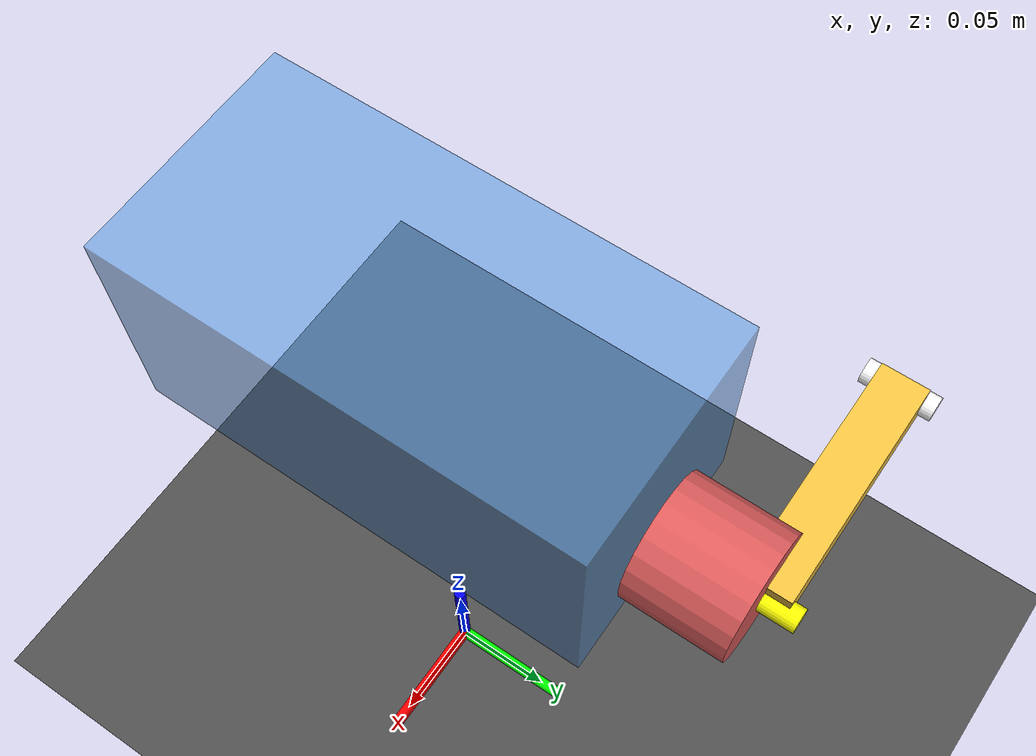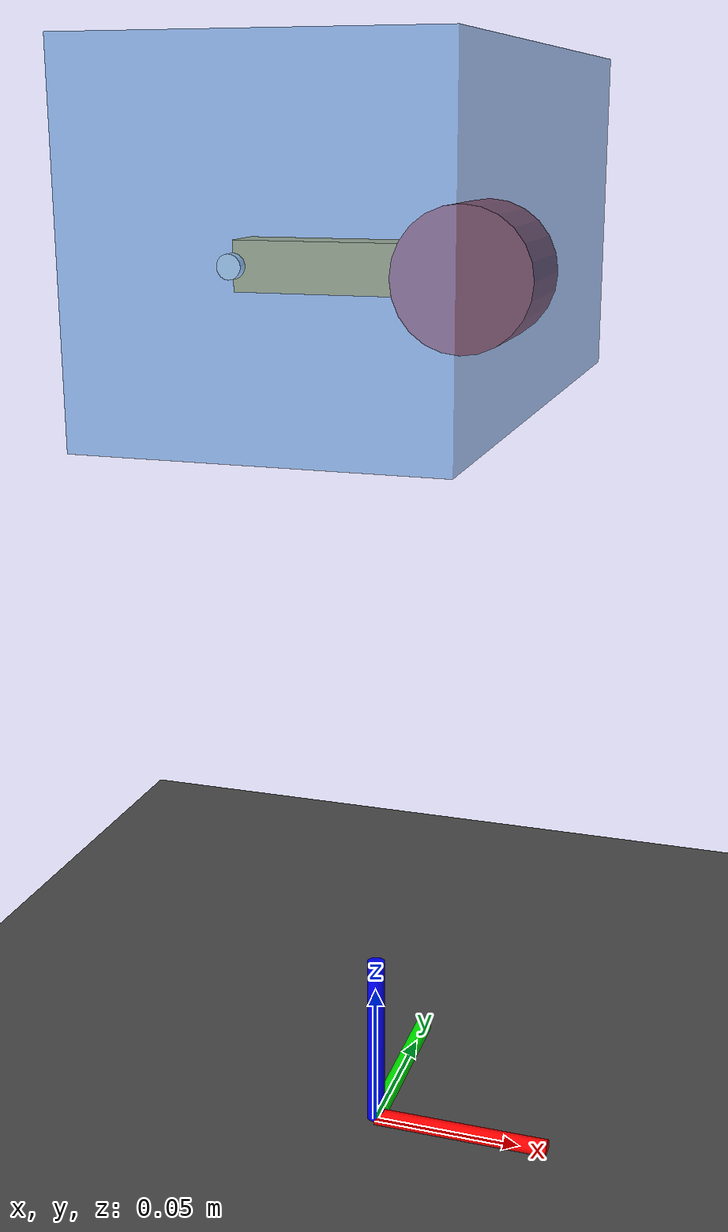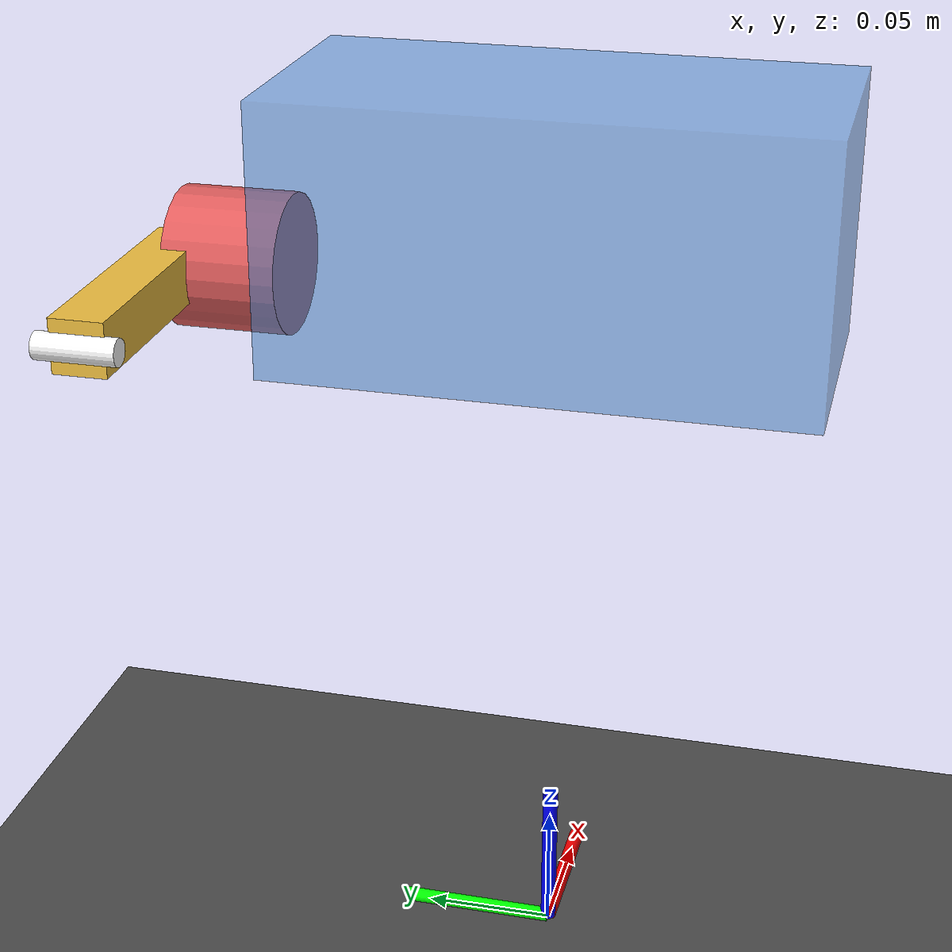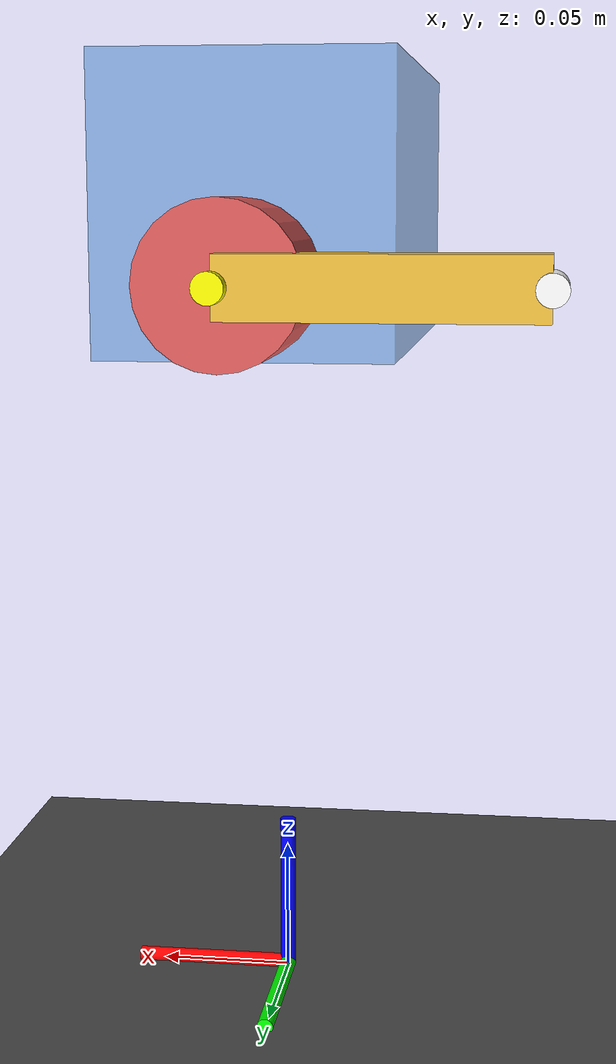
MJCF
<mujoco model="femur_jump">

  <option gravity="0 0 -9.81" timestep="0.00005"/>

  <visual>
    <global offwidth="1280" offheight="720" azimuth="270" elevation="0"/>
  </visual>

  <worldbody>

    <light name="main" pos="0 -1 1" dir="0 1 -1" diffuse="0.8 0.8 0.8"/>
    <light name="fill" pos="0  1 1" dir="0 -1 -1" diffuse="0.3 0.3 0.3"/>

    <!-- Ground plane -->
    <geom name="ground" type="plane" pos="0 0 0" size="2 2 0.01"
          rgba="0.3 0.3 0.3 1" contype="1" conaffinity="1" friction="0.8 0.005 0.0001"/>

    <!-- XYZ axis markers at origin (visual only) -->
    <geom name="axis_x" type="cylinder" fromto="0 0 0.001  0.06 0 0.001"
          size="0.003" rgba="1 0 0 1" contype="0" conaffinity="0" mass="0"/>
    <geom name="axis_y" type="cylinder" fromto="0 0 0.001  0 0.06 0.001"
          size="0.003" rgba="0 1 0 1" contype="0" conaffinity="0" mass="0"/>
    <geom name="axis_z" type="cylinder" fromto="0 0 0.001  0 0 0.061"
          size="0.003" rgba="0 0 1 1" contype="0" conaffinity="0" mass="0"/>

    <!-- ── Body box — slides vertically only ──────────────────────────── -->
    <body name="box" pos="0 0 0.30">

      <!-- Vertical slide joint: 1 DOF up/down, rotation locked at 0 -->
      <joint name="body_slide" type="slide" axis="0 0 1" pos="0 0 0"/>

      <!-- Box: 100 mm (X) × 200 mm (Y) × 100 mm (Z), semi-transparent
           Mass absorbs all removed parts (tibia+coupler+wheel+motor) to keep
           total sim mass equal to 4bar_jump (1.222 kg) -->
      <geom name="box_geom" type="box"
            size="0.05 0.10 0.05"
            rgba="0.29 0.56 0.85 0.55"
            contype="0" conaffinity="0"
            mass="0.937"/>

      <!-- Hip motor AK45-10: 260 g, Φ53 mm × 43 mm cylinder -->
      <geom name="motor_geom" type="cylinder"
            pos="0 0.1215 -0.0235"
            euler="90 0 0"
            size="0.0265 0.0215"
            rgba="0.87 0.36 0.36 0.95"
            contype="0" conaffinity="0"
            mass="0.260"/>

      <!-- ── Femur ─────────────────────────────────────────────────────── -->
      <body name="femur" pos="0 0.1430 -0.0235">

        <joint name="hip" type="hinge"
               axis="0 1 0"
               pos="0 0 0"
               range="-180 180"
               armature="0.01"
               damping="0.05"/>

        <geom type="cylinder" pos="0 0 0" euler="90 0 0" size="0.005 0.015"
              rgba="1 1 0 0.9" contype="0" conaffinity="0" mass="0"/>

        <!-- Femur collides with ground — frictionless, critically damped contact -->
        <geom name="femur_geom" type="box"
              pos="-0.05 0 0"
              size="0.05 0.01 0.01"
              rgba="0.94 0.75 0.25 1.0"
              contype="1" conaffinity="1"
              friction="0 0 0"
              solref="0.01 1.0"
              solimp="0.9 0.99 0.001"
              mass="0.025"/>

        <geom type="cylinder" pos="-0.1 0 0" euler="90 0 0" size="0.005 0.015"
              rgba="1 1 1 0.9" contype="0" conaffinity="0" mass="0"/>

      </body><!-- femur -->

    </body><!-- box -->

  </worldbody>

  <!-- Torque actuator: PD-to-torque control implemented in Python -->
  <actuator>
    <motor name="hip_motor" joint="hip" ctrlrange="-7.0 7.0" gear="1"/>
  </actuator>

  <!-- Camera: side view -->
  <statistic center="0 0 0.30" extent="0.75"/>

</mujoco>
